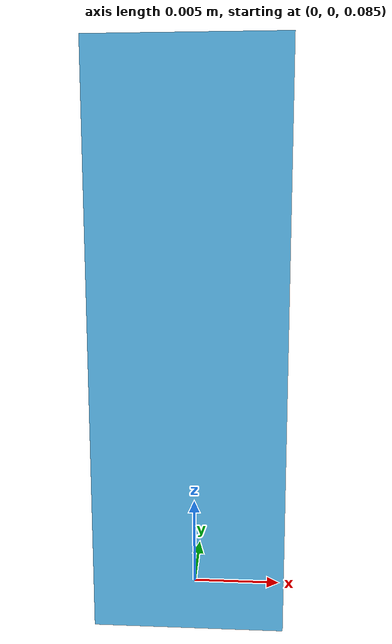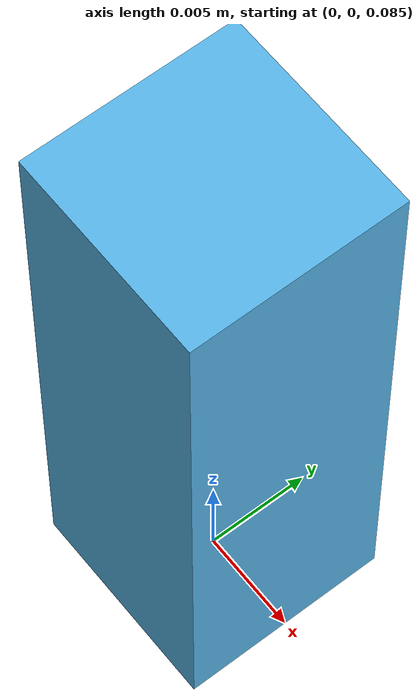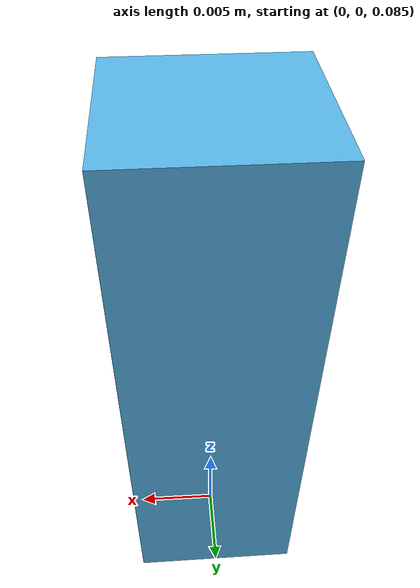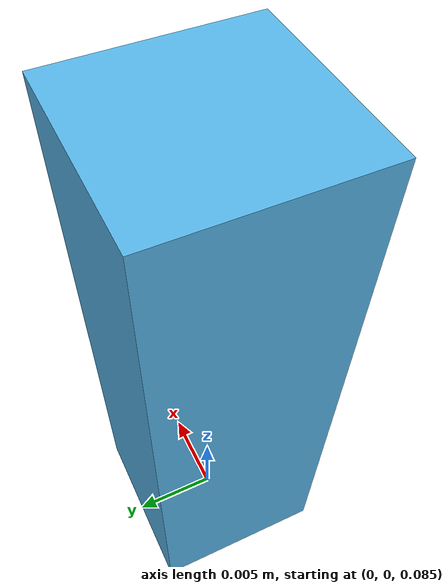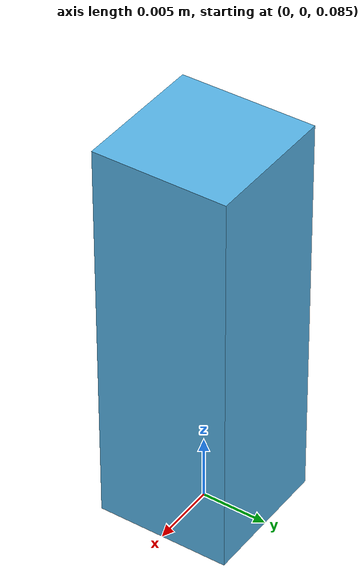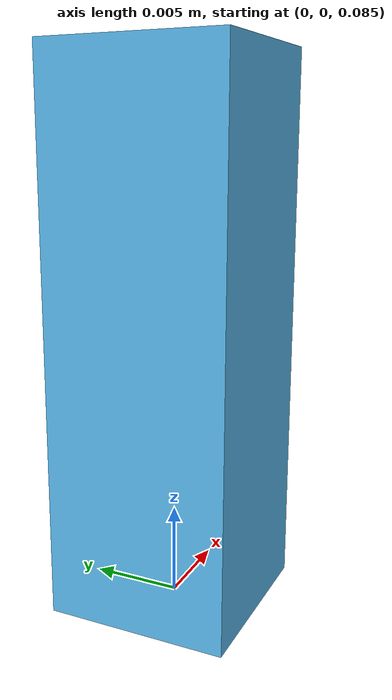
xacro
<?xml version="1.0" ?>
<robot name="camera" xmlns:xacro="http://www.ros.org/wiki/xacro">

  <link name="world">
      <origin xyz="0.0 0.0 0.0"/>
  </link>

  <joint name="camera_joint" type="fixed">
      <parent link="world"/>
      <child link="camera_link"/>
      <origin rpy="1.5708 -1.5708 -1.5708" xyz="0 0.0 0.1"/>
  </joint>

  <link name="camera_link">
    <visual>
      <origin xyz="0 0 0.0" rpy="0 0 0"/>
      <geometry>
        <box size="0.03 0.01 0.01"/>
      </geometry>
    </visual>

    <inertial>
      <mass value="10" />
      <origin xyz="0 0 0" rpy="0 0 0"/>
      <inertia ixx="1e-6" ixy="0" ixz="0" iyy="1e-6" iyz="0" izz="1e-6" />
    </inertial>
  </link>

    <gazebo reference="camera_link">
      <sensor name="camera" type="wideanglecamera">
        <camera>
          <horizontal_fov>3.14159</horizontal_fov>
          <image>
            <width>3000</width>
            <height>3000</height>
          </image>
          <clip>
            <near>0.1</near>
            <far>99999</far>
          </clip>
          <lens>
            <type>custom</type>
            <custom_function>
              <c1>1.05</c1>
              <c2>4</c2>
              <f>1.0</f>
              <fun>sin</fun>
            </custom_function>
            <scale_to_hfov>true</scale_to_hfov>
            <cutoff_angle>1.5708</cutoff_angle>
            <env_texture_size>512</env_texture_size>
          </lens>
          <always_on>true</always_on>
          <update_rate>30</update_rate>
        </camera>
        <plugin name="camera_controller" filename="libgazebo_ros_camera.so">
          <alwaysOn>true</alwaysOn>
          <updateRate>30</updateRate>
          <cameraName>cam</cameraName>
          <imageTopicName>image_raw</imageTopicName>
          <cameraInfoTopicName>camera_info</cameraInfoTopicName>
          <frameName>camera_link</frameName>

          <focalLength>1092</focalLength>
          <hackBaseline>0</hackBaseline>
          <distortionK1>-0.038510</distortionK1>
          <distortionK2>0.032394</distortionK2>
          <distortionT1>-0.027781</distortionT1>
          <distortionT2>0.007577</distortionT2>
          <CxPrime>1500</CxPrime>
          <Cx>1500</Cx>
          <Cy>1500</Cy>

        </plugin>
      </sensor>
    </gazebo>

</robot>
